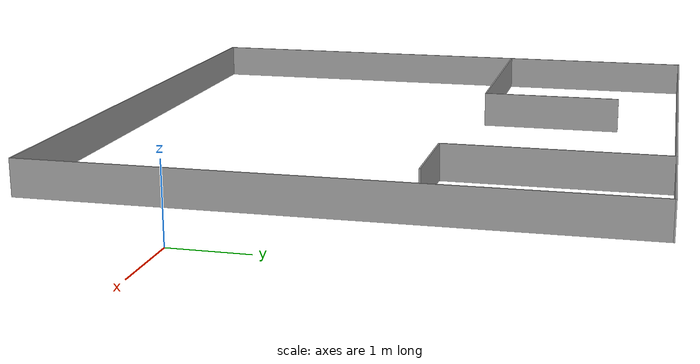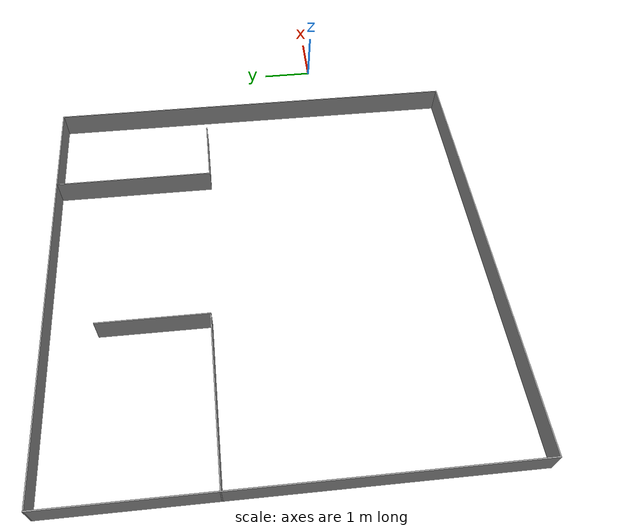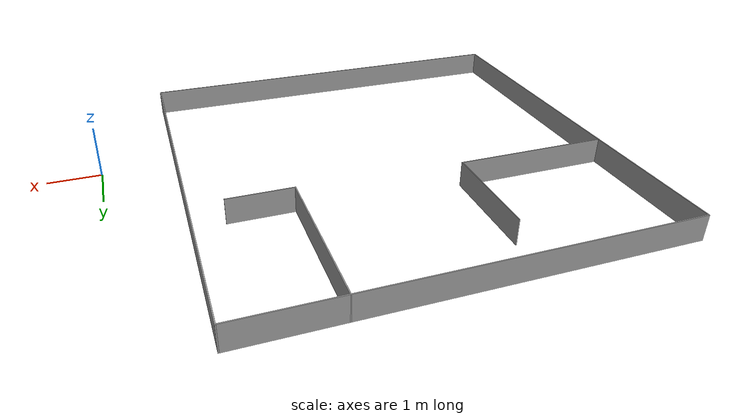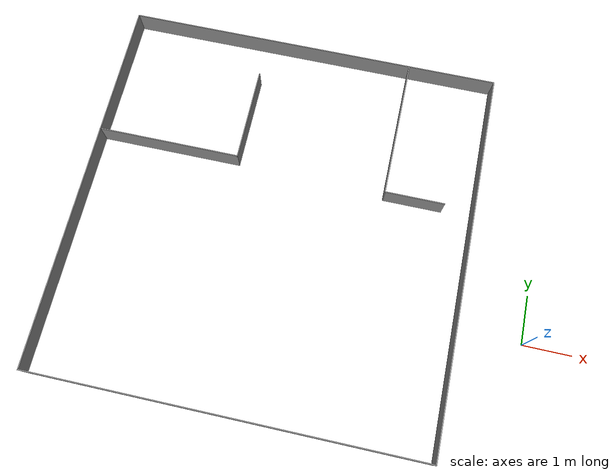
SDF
<?xml version='1.0'?>
<sdf version='1.7'>
  <model name='arena'>
    <pose>-4.685 1.407 0 0 -0 0</pose>
    <link name='Wall_0'>
      <collision name='Wall_0_Collision'>
        <geometry>
          <box>
            <size>8 0.02 0.5</size>
          </box>
        </geometry>
        <pose>0 0 0.25 0 -0 0</pose>
      </collision>
      <visual name='Wall_0_Visual'>
        <pose>0 0 0.25 0 -0 0</pose>
        <geometry>
          <box>
            <size>8 0.02 0.5</size>
          </box>
        </geometry>
        <material>
          <script>
            <uri>file://media/materials/scripts/gazebo.material</uri>
            <name>Gazebo/Grey</name>
          </script>
          <ambient>1 1 1 1</ambient>
        </material>
        <meta>
          <layer>0</layer>
        </meta>
      </visual>
      <pose>-4.675 -0 0 0 -0 -1.5708</pose>
    </link>
    <link name='Wall_10'>
      <collision name='Wall_10_Collision'>
        <geometry>
          <box>
            <size>3 0.02 0.5</size>
          </box>
        </geometry>
        <pose>0 0 0.25 0 -0 0</pose>
      </collision>
      <visual name='Wall_10_Visual'>
        <pose>0 0 0.25 0 -0 0</pose>
        <geometry>
          <box>
            <size>3 0.02 0.5</size>
          </box>
        </geometry>
        <material>
          <script>
            <uri>file://media/materials/scripts/gazebo.material</uri>
            <name>Gazebo/Grey</name>
          </script>
          <ambient>1 1 1 1</ambient>
        </material>
        <meta>
          <layer>0</layer>
        </meta>
      </visual>
      <pose>-3.185 1.14 0 0 -0 0</pose>
    </link>
    <link name='Wall_12'>
      <collision name='Wall_12_Collision'>
        <geometry>
          <box>
            <size>2 0.02 0.5</size>
          </box>
        </geometry>
        <pose>0 0 0.25 0 -0 0</pose>
      </collision>
      <visual name='Wall_12_Visual'>
        <pose>0 0 0.25 0 -0 0</pose>
        <geometry>
          <box>
            <size>2 0.02 0.5</size>
          </box>
        </geometry>
        <material>
          <script>
            <uri>file://media/materials/scripts/gazebo.material</uri>
            <name>Gazebo/Grey</name>
          </script>
          <ambient>1 1 1 1</ambient>
        </material>
        <meta>
          <layer>0</layer>
        </meta>
      </visual>
      <pose>-1.695 2.13 0 0 -0 1.5708</pose>
    </link>
    <link name='Wall_15'>
      <collision name='Wall_15_Collision'>
        <geometry>
          <box>
            <size>3 0.02 0.5</size>
          </box>
        </geometry>
        <pose>0 0 0.25 0 -0 0</pose>
      </collision>
      <visual name='Wall_15_Visual'>
        <pose>0 0 0.25 0 -0 0</pose>
        <geometry>
          <box>
            <size>3 0.02 0.5</size>
          </box>
        </geometry>
        <material>
          <script>
            <uri>file://media/materials/scripts/gazebo.material</uri>
            <name>Gazebo/Grey</name>
          </script>
          <ambient>1 1 1 1</ambient>
        </material>
        <meta>
          <layer>0</layer>
        </meta>
      </visual>
      <pose>1.455 2.5 0 0 -0 -1.5708</pose>
    </link>
    <link name='Wall_17'>
      <collision name='Wall_17_Collision'>
        <geometry>
          <box>
            <size>1.25 0.02 0.5</size>
          </box>
        </geometry>
        <pose>0 0 0.25 0 -0 0</pose>
      </collision>
      <visual name='Wall_17_Visual'>
        <pose>0 0 0.25 0 -0 0</pose>
        <geometry>
          <box>
            <size>1.25 0.02 0.5</size>
          </box>
        </geometry>
        <material>
          <script>
            <uri>file://media/materials/scripts/gazebo.material</uri>
            <name>Gazebo/Grey</name>
          </script>
          <ambient>1 1 1 1</ambient>
        </material>
        <meta>
          <layer>0</layer>
        </meta>
      </visual>
      <pose>2.07 1.01 0 0 -0 0</pose>
    </link>
    <link name='Wall_2'>
      <collision name='Wall_2_Collision'>
        <geometry>
          <box>
            <size>8 0.02 0.5</size>
          </box>
        </geometry>
        <pose>0 0 0.25 0 -0 0</pose>
      </collision>
      <visual name='Wall_2_Visual'>
        <pose>0 0 0.25 0 -0 0</pose>
        <geometry>
          <box>
            <size>8 0.02 0.5</size>
          </box>
        </geometry>
        <material>
          <script>
            <uri>file://media/materials/scripts/gazebo.material</uri>
            <name>Gazebo/Grey</name>
          </script>
          <ambient>1 1 1 1</ambient>
        </material>
        <meta>
          <layer>0</layer>
        </meta>
      </visual>
      <pose>-0.685 -3.99 0 0 -0 0</pose>
    </link>
    <link name='Wall_4'>
      <collision name='Wall_4_Collision'>
        <geometry>
          <box>
            <size>8 0.02 0.5</size>
          </box>
        </geometry>
        <pose>0 0 0.25 0 -0 0</pose>
      </collision>
      <visual name='Wall_4_Visual'>
        <pose>0 0 0.25 0 -0 0</pose>
        <geometry>
          <box>
            <size>8 0.02 0.5</size>
          </box>
        </geometry>
        <material>
          <script>
            <uri>file://media/materials/scripts/gazebo.material</uri>
            <name>Gazebo/Grey</name>
          </script>
          <ambient>1 1 1 1</ambient>
        </material>
        <meta>
          <layer>0</layer>
        </meta>
      </visual>
      <pose>3.305 -0 0 0 -0 1.5708</pose>
    </link>
    <link name='Wall_6'>
      <collision name='Wall_6_Collision'>
        <geometry>
          <box>
            <size>8 0.02 0.5</size>
          </box>
        </geometry>
        <pose>0 0 0.25 0 -0 0</pose>
      </collision>
      <visual name='Wall_6_Visual'>
        <pose>0 0 0.25 0 -0 0</pose>
        <geometry>
          <box>
            <size>8 0.02 0.5</size>
          </box>
        </geometry>
        <material>
          <script>
            <uri>file://media/materials/scripts/gazebo.material</uri>
            <name>Gazebo/Grey</name>
          </script>
          <ambient>1 1 1 1</ambient>
        </material>
        <meta>
          <layer>0</layer>
        </meta>
      </visual>
      <pose>-0.685 3.99 0 0 -0 3.14159</pose>
    </link>
    <static>1</static>
  </model>
</sdf>
